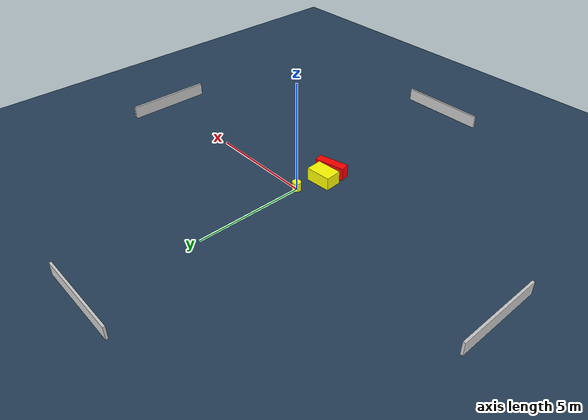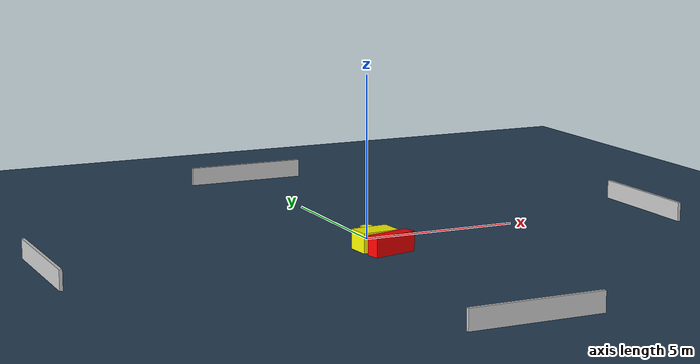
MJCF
<?xml version="1.0" ?>
<mujoco model="generated_environment">
  <option timestep="0.01" integrator="RK4" cone="elliptic"/>
  <default>
    <geom density="1"/>
  </default>
  <asset>
    <texture builtin="gradient" height="3072" name="skybox" rgb1="0.3 0.5 0.7" rgb2="0 0 0" type="skybox" width="512"/>
    <texture builtin="checker" height="300" name="groundplane" rgb1="0.2 0.3 0.4" rgb2="0.1 0.2 0.3" type="2d" width="300"/>
    <material name="groundplane" reflectance="0.2" texrepeat="5 5" texture="groundplane"/>
  </asset>
  <worldbody>
    <light dir="0 0 -1" directional="true" pos="0 0 1.5"/>
    <geom condim="3" friction="0.5 0.005 0.001" material="groundplane" name="floor" pos="0 0 0" size="0 0 0.05" type="plane"/>
    <body name="walls">
      <geom name="wall_1" condim="4" pos="-10.0 0.0 0.3" rgba="0.800000011920929 0.800000011920929 0.800000011920929 1.0" size="0.05 2.0 0.3" type="box"/>
      <geom name="wall_2" condim="4" pos="10.0 0.0 0.3" rgba="0.800000011920929 0.800000011920929 0.800000011920929 1.0" size="0.05 2.0 0.3" type="box"/>
      <geom name="wall_3" condim="4" pos="0.0 -10.0 0.3" rgba="0.800000011920929 0.800000011920929 0.800000011920929 1.0" size="2.0 0.05 0.3" type="box"/>
      <geom name="wall_4" condim="4" pos="0.0 10.0 0.3" rgba="0.800000011920929 0.800000011920929 0.800000011920929 1.0" size="2.0 0.05 0.3" type="box"/>
    </body>
    <body name="robot">
      <joint name="joint_x" type="slide" pos="0 0 0" axis="1 0 0"/>
      <joint name="joint_y" type="slide" pos="0 0 0" axis="0 1 0"/>
      <geom name="robot" type="cylinder" pos="0.0 0.0 0.2" size="0.2 0.2 0.0" mass="5.0" friction="1.0 0.005 0.0001" condim="4" rgba="1.0 1.0 0.0 1.0"/>
    </body>
    <body name="obstacle_1_movable">
      <geom name="obstacle_1_movable" condim="4" pos="-0.3301426577760176 -1.2637083070464126 0.3" euler="0 0 93.88133102656185" friction="0.0 0.005 0.001" rgba="1.0 1.0 0.0 1.0" size="0.3792458493721633 0.584386618667901 0.3" type="box" mass="0.1"/>
      <joint type="free"/>
    </body>
    <body name="obstacle_2_static">
      <geom name="obstacle_2_static" condim="4" pos="-0.12588029320606503 -1.946347347118074 0.3" euler="0 0 193.54397651955176" friction="0.0 0.005 0.001" rgba="1.0 0.0 0.0 1.0" size="0.7061670943229414 0.2082777514337978 0.3" type="box"/>
    </body>
  </worldbody>
  <actuator>
    <motor name="actuator_x" joint="joint_x" gear="1" ctrlrange="-1 1"/>
    <motor name="actuator_y" joint="joint_y" gear="1" ctrlrange="-1 1"/>
  </actuator>
</mujoco>
